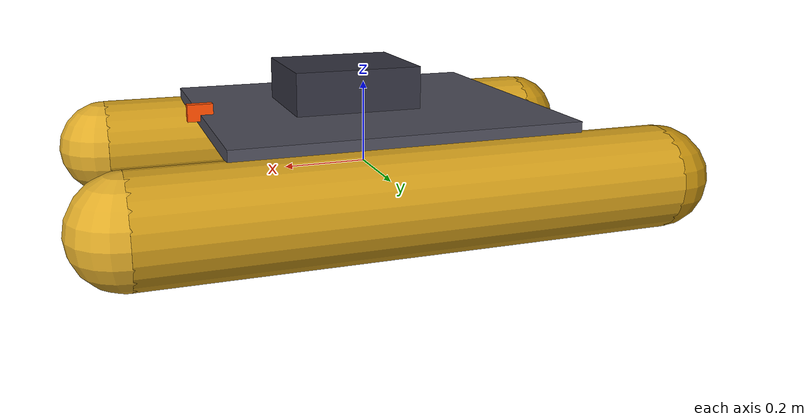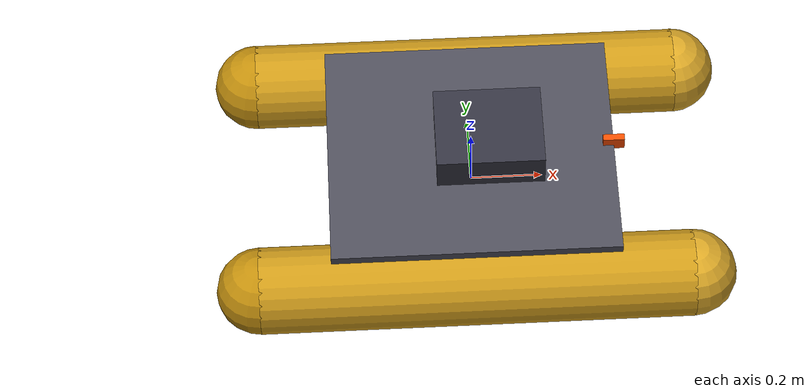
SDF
<?xml version="1.0" encoding="UTF-8"?>
<sdf version='1.9'>
  <model name='xroboato'>
    <pose>0 0 0.05 0 0 0</pose>
    <self_collide>false</self_collide>
    <static>false</static>

    <!--  Base link: Heron-class catamaran hull                        -->
    <!--  Length: 1.35 m, Width: 0.98 m, Height: 0.32 m               -->
    <!--  Mass: 28 kg total (hull + payload + battery)                 -->
    <!--  Draft: 0.15 m                                                -->
    <!--  Two pontoons separated by 0.70 m (center-to-center)         -->
    <!--  connected by a deck plate                                    -->
    <link name="base_link">
      <inertial>
        <mass>27.0</mass>
        <inertia>
          <!-- Catamaran inertia: wide beam, moderate length -->
          <ixx>2.5</ixx>
          <ixy>0</ixy>
          <ixz>0</ixz>
          <iyy>4.5</iyy>
          <iyz>0</iyz>
          <izz>5.5</izz>
        </inertia>
      </inertial>
      <gravity>true</gravity>

      <!-- Port pontoon (left, Y = -0.35) -->
      <visual name="pontoon_port">
        <pose>0 -0.35 -0.05 0 1.5707963 0</pose>
        <geometry>
          <cylinder>
            <radius>0.12</radius>
            <length>1.20</length>
          </cylinder>
        </geometry>
        <material>
          <ambient>0.8 0.6 0.1 1</ambient>
          <diffuse>0.8 0.6 0.1 1</diffuse>
          <specular>0.4 0.4 0.4 1</specular>
        </material>
      </visual>
      <!-- Port pontoon nose cap -->
      <visual name="pontoon_port_nose">
        <pose>0.60 -0.35 -0.05 0 0 0</pose>
        <geometry>
          <sphere><radius>0.12</radius></sphere>
        </geometry>
        <material>
          <ambient>0.85 0.65 0.15 1</ambient>
          <diffuse>0.85 0.65 0.15 1</diffuse>
        </material>
      </visual>
      <!-- Port pontoon tail cap -->
      <visual name="pontoon_port_tail">
        <pose>-0.60 -0.35 -0.05 0 0 0</pose>
        <geometry>
          <sphere><radius>0.12</radius></sphere>
        </geometry>
        <material>
          <ambient>0.75 0.55 0.05 1</ambient>
          <diffuse>0.75 0.55 0.05 1</diffuse>
        </material>
      </visual>

      <!-- Starboard pontoon (right, Y = +0.35) -->
      <visual name="pontoon_starboard">
        <pose>0 0.35 -0.05 0 1.5707963 0</pose>
        <geometry>
          <cylinder>
            <radius>0.12</radius>
            <length>1.20</length>
          </cylinder>
        </geometry>
        <material>
          <ambient>0.8 0.6 0.1 1</ambient>
          <diffuse>0.8 0.6 0.1 1</diffuse>
          <specular>0.4 0.4 0.4 1</specular>
        </material>
      </visual>
      <!-- Starboard pontoon nose cap -->
      <visual name="pontoon_starboard_nose">
        <pose>0.60 0.35 -0.05 0 0 0</pose>
        <geometry>
          <sphere><radius>0.12</radius></sphere>
        </geometry>
        <material>
          <ambient>0.85 0.65 0.15 1</ambient>
          <diffuse>0.85 0.65 0.15 1</diffuse>
        </material>
      </visual>
      <!-- Starboard pontoon tail cap -->
      <visual name="pontoon_starboard_tail">
        <pose>-0.60 0.35 -0.05 0 0 0</pose>
        <geometry>
          <sphere><radius>0.12</radius></sphere>
        </geometry>
        <material>
          <ambient>0.75 0.55 0.05 1</ambient>
          <diffuse>0.75 0.55 0.05 1</diffuse>
        </material>
      </visual>

      <!-- Deck plate connecting pontoons -->
      <visual name="deck">
        <pose>0 0 0.08 0 0 0</pose>
        <geometry>
          <box>
            <size>0.80 0.70 0.03</size>
          </box>
        </geometry>
        <material>
          <ambient>0.3 0.3 0.35 1</ambient>
          <diffuse>0.3 0.3 0.35 1</diffuse>
          <specular>0.2 0.2 0.2 1</specular>
        </material>
      </visual>

      <!-- Electronics enclosure on deck -->
      <visual name="enclosure">
        <pose>0.05 0 0.15 0 0 0</pose>
        <geometry>
          <box>
            <size>0.30 0.25 0.10</size>
          </box>
        </geometry>
        <material>
          <ambient>0.2 0.2 0.25 1</ambient>
          <diffuse>0.2 0.2 0.25 1</diffuse>
        </material>
      </visual>

      <!-- Forward heading marker -->
      <visual name="forward_marker">
        <pose>0.40 0 0.10 0 0 0</pose>
        <geometry>
          <box><size>0.06 0.02 0.04</size></box>
        </geometry>
        <material>
          <ambient>1.0 0.3 0.0 1</ambient>
          <diffuse>1.0 0.3 0.0 1</diffuse>
        </material>
      </visual>

      <!-- Collision: two pontoon boxes + deck -->
      <collision name="pontoon_port_collision">
        <pose>0 -0.35 -0.05 0 0 0</pose>
        <geometry>
          <box><size>1.35 0.24 0.24</size></box>
        </geometry>
        <surface>
          <contact><ode><min_depth>0.003</min_depth><max_vel>0</max_vel></ode></contact>
          <friction><ode/></friction>
        </surface>
      </collision>
      <collision name="pontoon_starboard_collision">
        <pose>0 0.35 -0.05 0 0 0</pose>
        <geometry>
          <box><size>1.35 0.24 0.24</size></box>
        </geometry>
        <surface>
          <contact><ode><min_depth>0.003</min_depth><max_vel>0</max_vel></ode></contact>
          <friction><ode/></friction>
        </surface>
      </collision>
      <collision name="deck_collision">
        <pose>0 0 0.08 0 0 0</pose>
        <geometry>
          <box><size>0.80 0.70 0.03</size></box>
        </geometry>
      </collision>

      <!-- ======== Sensors ======== -->

      <!-- IMU -->
      <sensor name="imu_sensor" type="imu">
        <gz_frame_id>base_link</gz_frame_id>
        <always_on>1</always_on>
        <update_rate>250</update_rate>
        <imu>
          <angular_velocity>
            <x><noise type="gaussian"><mean>0</mean><stddev>0.0008726646</stddev></noise></x>
            <y><noise type="gaussian"><mean>0</mean><stddev>0.0008726646</stddev></noise></y>
            <z><noise type="gaussian"><mean>0</mean><stddev>0.0008726646</stddev></noise></z>
          </angular_velocity>
          <linear_acceleration>
            <x><noise type="gaussian"><mean>0</mean><stddev>0.00637</stddev></noise></x>
            <y><noise type="gaussian"><mean>0</mean><stddev>0.00637</stddev></noise></y>
            <z><noise type="gaussian"><mean>0</mean><stddev>0.00637</stddev></noise></z>
          </linear_acceleration>
        </imu>
      </sensor>

      <!-- Barometer -->
      <sensor name="air_pressure_sensor" type="air_pressure">
        <gz_frame_id>base_link</gz_frame_id>
        <always_on>1</always_on>
        <update_rate>50</update_rate>
        <air_pressure>
          <pressure>
            <noise type="gaussian"><mean>0</mean><stddev>3</stddev></noise>
          </pressure>
        </air_pressure>
      </sensor>

      <!-- Magnetometer -->
      <sensor name="magnetometer_sensor" type="magnetometer">
        <gz_frame_id>base_link</gz_frame_id>
        <always_on>1</always_on>
        <update_rate>100</update_rate>
        <magnetometer>
          <x><noise type="gaussian"><stddev>0.0001</stddev></noise></x>
          <y><noise type="gaussian"><stddev>0.0001</stddev></noise></y>
          <z><noise type="gaussian"><stddev>0.0001</stddev></noise></z>
        </magnetometer>
      </sensor>

      <!-- GPS -->
      <sensor name="navsat_sensor" type="navsat">
        <gz_frame_id>base_link</gz_frame_id>
        <always_on>1</always_on>
        <update_rate>30</update_rate>
      </sensor>
    </link>

    <!--  Thruster 0: port (rear-left)                                 -->
    <!--  Water jet at rear of port pontoon                            -->
    <link name="rotor_0">
      <pose>-0.60 -0.35 -0.05 0 1.5707963 0</pose>
      <gravity>true</gravity>
      <self_collide>false</self_collide>
      <inertial>
        <mass>0.5</mass>
        <inertia>
          <ixx>5.0e-04</ixx> <ixy>0</ixy> <ixz>0</ixz>
          <iyy>5.0e-04</iyy> <iyz>0</iyz>
          <izz>5.0e-04</izz>
        </inertia>
      </inertial>
      <visual name="rotor_0_visual">
        <geometry>
          <cylinder><radius>0.04</radius><length>0.08</length></cylinder>
        </geometry>
        <material>
          <ambient>0.7 0.1 0.1 1</ambient>
          <diffuse>0.7 0.1 0.1 1</diffuse>
        </material>
      </visual>
    </link>
    <joint name="rotor_0_joint" type="revolute">
      <parent>base_link</parent>
      <child>rotor_0</child>
      <axis>
        <xyz>1 0 0</xyz>
        <limit><lower>-1e+16</lower><upper>1e+16</upper></limit>
        <dynamics><spring_reference>0</spring_reference><spring_stiffness>0</spring_stiffness></dynamics>
      </axis>
    </joint>

    <!--  Thruster 1: starboard (rear-right)                           -->
    <!--  Water jet at rear of starboard pontoon                       -->
    <link name="rotor_1">
      <pose>-0.60 0.35 -0.05 0 1.5707963 0</pose>
      <gravity>true</gravity>
      <self_collide>false</self_collide>
      <inertial>
        <mass>0.5</mass>
        <inertia>
          <ixx>5.0e-04</ixx> <ixy>0</ixy> <ixz>0</ixz>
          <iyy>5.0e-04</iyy> <iyz>0</iyz>
          <izz>5.0e-04</izz>
        </inertia>
      </inertial>
      <visual name="rotor_1_visual">
        <geometry>
          <cylinder><radius>0.04</radius><length>0.08</length></cylinder>
        </geometry>
        <material>
          <ambient>0.1 0.7 0.1 1</ambient>
          <diffuse>0.1 0.7 0.1 1</diffuse>
        </material>
      </visual>
    </link>
    <joint name="rotor_1_joint" type="revolute">
      <parent>base_link</parent>
      <child>rotor_1</child>
      <axis>
        <xyz>1 0 0</xyz>
        <limit><lower>-1e+16</lower><upper>1e+16</upper></limit>
        <dynamics><spring_reference>0</spring_reference><spring_stiffness>0</spring_stiffness></dynamics>
      </axis>
    </joint>

    <!--  Motor model plugins — water jet thrusters                    -->
    <!--  Heron max thrust ~25 N per jet at ~3.3 knots                 -->
    <plugin filename="gz-sim-multicopter-motor-model-system"
            name="gz::sim::systems::MulticopterMotorModel">
      <jointName>rotor_0_joint</jointName>
      <linkName>rotor_0</linkName>
      <turningDirection>ccw</turningDirection>
      <timeConstantUp>0.05</timeConstantUp>
      <timeConstantDown>0.08</timeConstantDown>
      <maxRotVelocity>400.0</maxRotVelocity>
      <motorConstant>2.0e-04</motorConstant>
      <momentConstant>0.005</momentConstant>
      <commandSubTopic>command/motor_speed</commandSubTopic>
      <motorNumber>0</motorNumber>
      <rotorDragCoefficient>1.0e-04</rotorDragCoefficient>
      <rollingMomentCoefficient>1e-06</rollingMomentCoefficient>
      <rotorVelocitySlowdownSim>10</rotorVelocitySlowdownSim>
      <motorType>velocity</motorType>
    </plugin>
    <plugin filename="gz-sim-multicopter-motor-model-system"
            name="gz::sim::systems::MulticopterMotorModel">
      <jointName>rotor_1_joint</jointName>
      <linkName>rotor_1</linkName>
      <turningDirection>cw</turningDirection>
      <timeConstantUp>0.05</timeConstantUp>
      <timeConstantDown>0.08</timeConstantDown>
      <maxRotVelocity>400.0</maxRotVelocity>
      <motorConstant>2.0e-04</motorConstant>
      <momentConstant>0.005</momentConstant>
      <commandSubTopic>command/motor_speed</commandSubTopic>
      <motorNumber>1</motorNumber>
      <rotorDragCoefficient>1.0e-04</rotorDragCoefficient>
      <rollingMomentCoefficient>1e-06</rollingMomentCoefficient>
      <rotorVelocitySlowdownSim>10</rotorVelocitySlowdownSim>
      <motorType>velocity</motorType>
    </plugin>

    <!--  Hydrodynamics: Fossen 6-DOF for surface vessel               -->
    <!--  Catamaran: 1.35 m × 0.98 m, 28 kg                           -->
    <!--  High sway/yaw drag from twin pontoons                        -->
    <!--  Low surge drag (streamlined hulls)                            -->
    <plugin filename="gz-sim-hydrodynamics-system"
            name="gz::sim::systems::Hydrodynamics">
      <link_name>base_link</link_name>

      <!-- Added mass [kg] / [kg*m^2] -->
      <xDotU>-3.0</xDotU>       <!-- surge  (streamlined catamaran) -->
      <yDotV>-25.0</yDotV>      <!-- sway   (wide beam resistance) -->
      <zDotW>-25.0</zDotW>      <!-- heave  -->
      <kDotP>-0.5</kDotP>       <!-- roll   (catamaran roll inertia) -->
      <mDotQ>-5.0</mDotQ>       <!-- pitch  -->
      <nDotR>-5.0</nDotR>       <!-- yaw    (wide beam) -->

      <!-- Quadratic drag: F = -C*|v|*v -->
      <xUabsU>-15.0</xUabsU>    <!-- surge  (twin hull skin friction) -->
      <yVabsV>-200.0</yVabsV>   <!-- sway   (broadside, two pontoons) -->
      <zWabsW>-200.0</zWabsW>   <!-- heave  -->
      <kPabsP>-5.0</kPabsP>     <!-- roll   (pontoon damping) -->
      <mQabsQ>-30.0</mQabsQ>    <!-- pitch  -->
      <nRabsR>-80.0</nRabsR>    <!-- yaw    (wide-beam differential) -->

      <!-- Linear drag (low-speed viscous) -->
      <xU>-5.0</xU>             <!-- surge  -->
      <yV>-15.0</yV>            <!-- sway   -->
      <zW>-15.0</zW>            <!-- heave  -->
      <kP>-2.0</kP>             <!-- roll   -->
      <mQ>-5.0</mQ>             <!-- pitch  -->
      <nR>-10.0</nR>            <!-- yaw    -->
    </plugin>

  </model>
</sdf>
